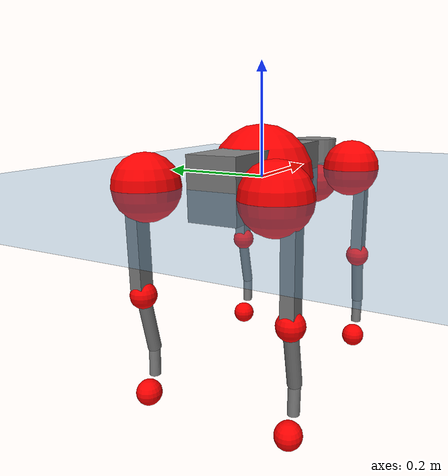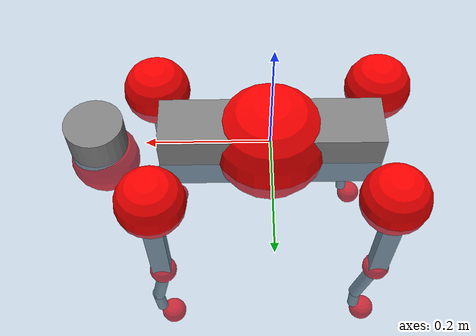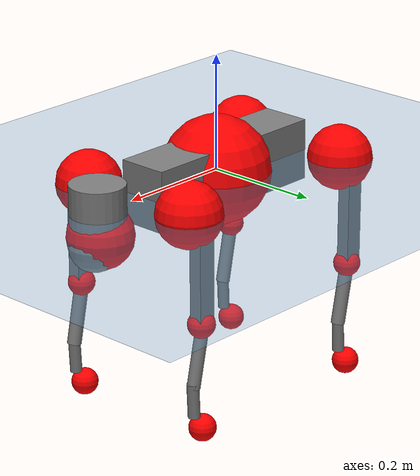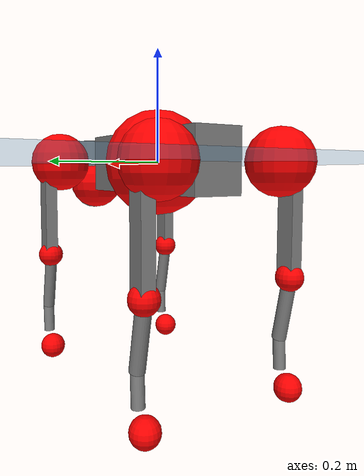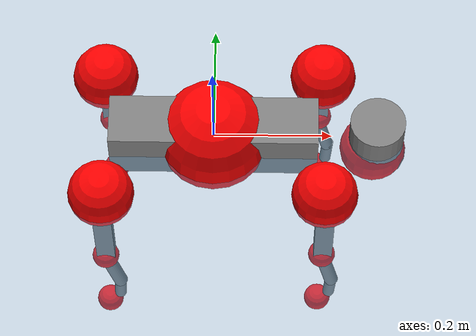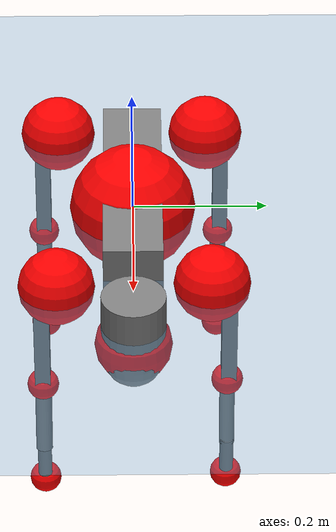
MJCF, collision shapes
<mujoco model="go2">
  <compiler angle="radian" assetdir="assets" balanceinertia="true" inertiafromgeom="false"/>

  <option timestep="0.005" density="1.2" viscosity="2e-05"/>

  <size nkey="1"/>

  <visual>
    <quality shadowsize="8192"/>
    <map shadowclip="0.5"/>
  </visual>

  <default>
    <default class="/">
      <geom contype="0" conaffinity="0" group="1" solref="-1000 -80"/>
      <site size="0.01 0.005 0.005" group="5"/>
      <general forcelimited="true" biastype="affine" gainprm="20" biasprm="0 -20 -0.5"/>
      <default class="go2">
        <joint armature="0.01" damping="0.01" frictionloss="0.2"/>
        <geom condim="1" margin="0.001"/>
        <default class="visual">
          <geom type="mesh" group="2"/>
        </default>
        <default class="collision">
          <geom group="3"/>
          <default class="foot">
            <geom size="0.022 0 0" condim="6" priority="1" friction="0.8 0.02 0.01" solimp="0.015 1 0.022"/>
          </default>
        </default>
        <default class="reward_collision_sphere">
          <geom group="5" rgba="1 0 0 1"/>
        </default>
      </default>
    </default>
  </default>

  <asset>
    <texture type="skybox" colorspace="auto" name="//unnamed_texture_0" builtin="gradient" rgb1="0.95 0.95 0.95" rgb2="0.95 0.95 0.95" width="100" height="600"/>
    <texture type="2d" colorspace="auto" name="texplane" builtin="checker" rgb1="0.345 0.575 0.748" rgb2="0.345 0.575 0.748" markrgb="1 1 1" width="512" height="512"/>
    <material name="MatPlane" class="/" texture="texplane" texuniform="true" texrepeat="2 2" specular="0.9"/>
    <material name="metal" class="/" rgba="0.9 0.95 0.95 1"/>
    <material name="black" class="/" rgba="0 0 0 1"/>
    <material name="white" class="/"/>
    <material name="gray" class="/" rgba="0.671705 0.692426 0.77427 1"/>
    <mesh name="base_0" class="/" file="base_0.obj"/>
    <mesh name="base_1" class="/" file="base_1.obj"/>
    <mesh name="base_2" class="/" file="base_2.obj"/>
    <mesh name="base_3" class="/" file="base_3.obj"/>
    <mesh name="base_4" class="/" file="base_4.obj"/>
    <mesh name="hip_0" class="/" file="hip_0.obj"/>
    <mesh name="hip_1" class="/" file="hip_1.obj"/>
    <mesh name="thigh_0" class="/" file="thigh_0.obj"/>
    <mesh name="thigh_1" class="/" file="thigh_1.obj"/>
    <mesh name="thigh_mirror_0" class="/" file="thigh_mirror_0.obj"/>
    <mesh name="thigh_mirror_1" class="/" file="thigh_mirror_1.obj"/>
    <mesh name="calf_0" class="/" file="calf_0.obj"/>
    <mesh name="calf_1" class="/" file="calf_1.obj"/>
    <mesh name="calf_mirror_0" class="/" file="calf_mirror_0.obj"/>
    <mesh name="calf_mirror_1" class="/" file="calf_mirror_1.obj"/>
    <mesh name="foot" class="/" file="foot.obj"/>
  </asset>

  <worldbody>
    <geom name="floor" class="/" size="100 100 0.125" type="plane" group="0" material="MatPlane"/>
    <light name="toplight_shadow" class="/" pos="0 0 5" dir="0.0990148 0.0990148 -0.990148" type="directional" ambient="0.04 0.04 0.04" diffuse="0.55 0.55 0.55" specular="0.12 0.12 0.12"/>
    <light name="toplight_fill" class="/" pos="0 0 5" dir="0.0990148 0.0990148 -0.990148" type="directional" castshadow="false" ambient="0.04 0.04 0.04" diffuse="0.3 0.3 0.3" specular="0.08 0.08 0.08"/>
    <body name="trunk" childclass="go2" pos="-7.19862e-05 -1.08364e-05 0.00013433" quat="1 5.66184e-06 -4.81145e-06 8.21094e-06">
      <inertial pos="0.0198229 -0.000373898 -0.00478929" quat="-0.00517038 0.708394 0.00164333 0.705796" mass="5.72671" diaginertia="0.0934158 0.0841212 0.0125529"/>
      <joint name="//unnamed_joint_0" type="free" armature="0" damping="0" frictionloss="0"/>
      <geom name="//unnamed_geom_1" class="visual" material="black" mesh="base_0"/>
      <geom name="//unnamed_geom_2" class="visual" material="black" mesh="base_1"/>
      <geom name="//unnamed_geom_3" class="visual" material="black" mesh="base_2"/>
      <geom name="//unnamed_geom_4" class="visual" material="white" mesh="base_3"/>
      <geom name="//unnamed_geom_5" class="visual" material="gray" mesh="base_4"/>
      <geom name="trunk_1" class="collision" size="0.176398 0.0438417 0.0534541" type="box"/>
      <geom name="trunk_2" class="collision" size="0.0468895 0.0422006" pos="0.276812 0 0.00875263" type="cylinder"/>
      <geom name="trunk_3" class="collision" size="0.0440762" pos="0.284582 0 -0.0525158"/>
      <geom name="//unnamed_geom_9" class="reward_collision_sphere" size="0.0937791"/>
      <geom name="//unnamed_geom_10" class="reward_collision_sphere" size="0.0562674" pos="0.271955 0 -0.0393868"/>
      <site name="imu" pos="-0.0254991 -0.00448432 0.0370219" size="0.00937791"/>
      <camera name="track" pos="0 -1.93368 0" quat="0.707107 0.707107 0 0" mode="trackcom"/>
      <camera name="ego_camera" pos="0.303036 0 0.0393868" quat="-0.5 -0.5 0.5 0.5"/>
      <body name="FL_hip" pos="0.186639 0.0469058 0.00254182" quat="1 -0.000119474 -6.25228e-05 7.22545e-05">
        <inertial pos="-0.00563195 0.00197964 -0.000969453" quat="0.49799 0.499022 0.504423 0.498538" mass="0.560881" diaginertia="0.000763491 0.000506846 0.000248389"/>
        <joint name="FL_hip_joint" pos="0 0 0" axis="0.999983 -0.00546586 -0.00216554" stiffness="0.00863601" range="-1.01227 1.0302" armature="0.00952314" damping="0.00250815" frictionloss="0.182516"/>
        <geom name="//unnamed_geom_11" class="visual" material="metal" mesh="hip_0"/>
        <geom name="//unnamed_geom_12" class="visual" material="gray" mesh="hip_1"/>
        <geom name="//unnamed_geom_13" class="collision" size="0.0431384 0.0187558" pos="0 0.0773473 0" quat="0.707107 0.707107 0 0" type="cylinder"/>
        <geom name="//unnamed_geom_14" class="reward_collision_sphere" size="0.0562674" pos="0 0.0676789 0"/>
        <body name="FL_thigh" pos="-0.00128177 0.0937962 0.00200631" quat="1 -0.00011119 0.000169178 -9.37551e-05">
          <inertial pos="-0.00432926 -0.0221566 -0.0279625" quat="0.830872 0.086471 -0.0195945 0.549354" mass="0.950314" diaginertia="0.00513763 0.00492124 0.000451498"/>
          <joint name="FL_thigh_joint" pos="0 0 0" axis="0.00396994 0.99998 -0.004827" stiffness="0.00492577" range="-1.5885 3.51651" armature="0.00950772" damping="0.0107688" frictionloss="0.180999"/>
          <geom name="//unnamed_geom_15" class="visual" material="metal" mesh="thigh_0"/>
          <geom name="//unnamed_geom_16" class="visual" material="gray" mesh="thigh_1"/>
          <geom name="//unnamed_geom_17" class="collision" size="0.0998747 0.0114879 0.0159424" pos="0 0 -0.0932155" quat="0.707107 0 0.707107 0" type="box"/>
          <body name="FL_calf" pos="-0.00073945 -0.00196639 -0.185786" quat="1 -0.000328869 0.00033406 1.87347e-05">
            <inertial pos="0.00561817 -0.000443496 -0.12497" quat="0.710653 0.00162446 -0.00464199 0.703526" mass="0.19828" diaginertia="0.00129142 0.0012585 2.68594e-05"/>
            <joint name="FL_calf_joint" pos="0 0 0" axis="-0.007629 0.99997 0.0014038" stiffness="0.00252776" range="-2.75487 -0.83291" armature="0.00976605" damping="0.000367445" frictionloss="0.187783"/>
            <geom name="//unnamed_geom_18" class="visual" material="gray" mesh="calf_0"/>
            <geom name="//unnamed_geom_19" class="visual" material="black" mesh="calf_1"/>
            <geom name="FL_calf0" class="collision" size="0.0112535 0.0562674" pos="0.00777015 0 -0.0525158" quat="0.994493 0 -0.104807 0" type="cylinder"/>
            <geom name="//unnamed_geom_21" class="collision" size="0.0103157 0.0304782" pos="0.0194254 0 -0.129539" quat="0.999688 0 0.0249974 0" type="cylinder"/>
            <geom name="//unnamed_geom_22" class="visual" pos="0 0 -0.186431" quat="1 0 0 0" material="black" mesh="foot"/>
            <geom name="FL_foot" class="foot" size="0.0183518" pos="-0.00194254 0 -0.186431"/>
            <geom name="//unnamed_geom_24" class="reward_collision_sphere" size="0.0234448"/>
            <geom name="//unnamed_geom_25" class="reward_collision_sphere" size="0.0234448" pos="-0.00194254 0 -0.186431"/>
            <site name="FL_foot" class="foot" pos="-0.00194254 0 -0.186431" size="0.00937791"/>
          </body>
        </body>
      </body>
      <body name="FR_hip" pos="0.188538 -0.0438391 -0.000631258" quat="1 7.50308e-05 -8.74586e-05 -0.000141008">
        <inertial pos="-0.00474866 -0.0011999 -0.000713907" quat="0.497766 0.506068 0.498634 0.497483" mass="0.55478" diaginertia="0.000767967 0.000492462 0.000247251"/>
        <joint name="FR_hip_joint" pos="0 0 0" axis="0.99999 -0.00431291 -0.000931049" stiffness="0.00705341" range="-1.05045 1.0524" armature="0.0092182" damping="0.0178989" frictionloss="0.181793"/>
        <geom name="//unnamed_geom_26" class="visual" pos="0 7.97797e-10 3.42192e-08" quat="4.63268e-05 1 0 0" material="metal" mesh="hip_0"/>
        <geom name="//unnamed_geom_27" class="visual" pos="0 1.29332e-09 -8.46371e-08" quat="4.63268e-05 1 0 0" material="gray" mesh="hip_1"/>
        <geom name="//unnamed_geom_28" class="collision" size="0.0431384 0.0187558" pos="0 -0.0773473 0" quat="0.707107 0.707107 0 0" type="cylinder"/>
        <geom name="//unnamed_geom_29" class="reward_collision_sphere" size="0.0562674" pos="0 -0.0676789 0"/>
        <body name="FR_thigh" pos="0.00199841 -0.0907325 0.00151681" quat="1 0.000369174 -0.000155621 0.000316927">
          <inertial pos="-0.00314579 0.0200844 -0.0283497" quat="0.552976 -0.017466 0.0873213 0.828425" mass="0.950315" diaginertia="0.00516812 0.00495342 0.000457913"/>
          <joint name="FR_thigh_joint" pos="0 0 0" axis="-0.000870839 -0.999999 0.000819317" stiffness="0.00010335" range="-3.51807 1.5677" armature="0.00950855" damping="0.0138265" frictionloss="0.187233"/>
          <geom name="//unnamed_geom_30" class="visual" material="metal" mesh="thigh_mirror_0"/>
          <geom name="//unnamed_geom_31" class="visual" material="gray" mesh="thigh_mirror_1"/>
          <geom name="//unnamed_geom_32" class="collision" size="0.0998747 0.0114879 0.0159424" pos="0 0 -0.0932155" quat="0.707107 0 0.707107 0" type="box"/>
          <body name="FR_calf" pos="-0.00112216 0.000156692 -0.18567" quat="1 -3.16491e-05 0.000311704 7.42921e-05">
            <inertial pos="0.00513284 0.000608596 -0.12463" quat="0.702381 -0.00752345 -0.000244232 0.711761" mass="0.199474" diaginertia="0.00129331 0.00123513 2.71811e-05"/>
            <joint name="FR_calf_joint" pos="0 0 0" axis="0.00392857 -0.999963 0.00768502" stiffness="0.00263047" range="0.846699 2.71421" armature="0.00990788" damping="0.0162807" frictionloss="0.182552"/>
            <geom name="//unnamed_geom_33" class="visual" material="gray" mesh="calf_mirror_0"/>
            <geom name="//unnamed_geom_34" class="visual" material="black" mesh="calf_mirror_1"/>
            <geom name="FR_calf0" class="collision" size="0.0121913 0.0562674" pos="0.00971268 0 -0.0525158" quat="0.995004 0 -0.0998334 0" type="cylinder"/>
            <geom name="//unnamed_geom_36" class="collision" size="0.0103157 0.0304782" pos="0.0194254 0 -0.129539" quat="0.999688 0 0.0249974 0" type="cylinder"/>
            <geom name="//unnamed_geom_37" class="visual" pos="0 0 -0.186431" quat="1 0 0 0" material="black" mesh="foot"/>
            <geom name="FR_foot" class="foot" size="0.0221143" pos="-0.00194254 0 -0.186431"/>
            <geom name="//unnamed_geom_39" class="reward_collision_sphere" size="0.0234448"/>
            <geom name="//unnamed_geom_40" class="reward_collision_sphere" size="0.0234448" pos="-0.00194254 0 -0.186431"/>
            <site name="FR_foot" class="foot" pos="-0.00194254 0 -0.186431" size="0.00937791"/>
          </body>
        </body>
      </body>
      <body name="RL_hip" pos="-0.188126 0.0445607 -0.000767059" quat="1 2.0309e-05 -4.69944e-05 -3.95106e-05">
        <inertial pos="0.00513021 0.00199748 -0.000736506" quat="0.505832 0.49728 0.497147 0.499691" mass="0.551312" diaginertia="0.000754277 0.000497732 0.000243252"/>
        <joint name="RL_hip_joint" pos="0 0 0" axis="-0.999893 -0.0100029 0.0106914" stiffness="0.00388155" range="-1.04503 1.0656" armature="0.00929937" damping="0.0115426" frictionloss="0.191428"/>
        <geom name="//unnamed_geom_41" class="visual" pos="-8.36364e-10 0 -1.63947e-07" quat="4.63268e-05 0 1 0" material="metal" mesh="hip_0"/>
        <geom name="//unnamed_geom_42" class="visual" pos="-1.35585e-09 0 -1.45397e-07" quat="4.63268e-05 0 1 0" material="gray" mesh="hip_1"/>
        <geom name="//unnamed_geom_43" class="collision" size="0.0431384 0.0187558" pos="0 0.0773473 0" quat="0.707107 0.707107 0 0" type="cylinder"/>
        <geom name="//unnamed_geom_44" class="reward_collision_sphere" size="0.0562674" pos="0 0.0676789 0"/>
        <body name="RL_thigh" pos="0.000526888 0.0917111 -0.00135852" quat="1 -5.71423e-05 -1.95949e-05 0.000198011">
          <inertial pos="-0.00377488 -0.021676 -0.0298376" quat="0.830678 0.0833799 -0.0163697 0.550231" mass="0.962336" diaginertia="0.00509849 0.00483745 0.00044661"/>
          <joint name="RL_thigh_joint" pos="0 0 0" axis="-0.00612701 0.999978 0.00240736" range="-0.522138 4.52192" armature="0.00969859" damping="0.00635225" frictionloss="0.186324"/>
          <geom name="//unnamed_geom_45" class="visual" material="metal" mesh="thigh_0"/>
          <geom name="//unnamed_geom_46" class="visual" material="gray" mesh="thigh_1"/>
          <geom name="//unnamed_geom_47" class="collision" size="0.0998747 0.0114879 0.0159424" pos="0 0 -0.0932155" quat="0.707107 0 0.707107 0" type="box"/>
          <body name="RL_calf" pos="0.00052602 -0.00234741 -0.187043" quat="1 9.42107e-06 3.11513e-06 3.55466e-06">
            <inertial pos="0.00606149 -0.000306296 -0.124186" quat="0.71042 0.00259979 -0.00373395 0.703763" mass="0.195131" diaginertia="0.00128561 0.00122796 2.70274e-05"/>
            <joint name="RL_calf_joint" pos="0 0 0" axis="0.00546342 0.999984 -0.00171615" stiffness="0.00021598" range="-2.69078 -0.834848" armature="0.00923243" damping="0.00418553" frictionloss="0.187137"/>
            <geom name="//unnamed_geom_48" class="visual" material="gray" mesh="calf_0"/>
            <geom name="//unnamed_geom_49" class="visual" material="black" mesh="calf_1"/>
            <geom name="RL_calf0" class="collision" size="0.0121913 0.0562674" pos="0.00971268 0 -0.0525158" quat="0.995004 0 -0.0998334 0" type="cylinder"/>
            <geom name="//unnamed_geom_51" class="collision" size="0.0103157 0.0304782" pos="0.0194254 0 -0.129539" quat="0.999688 0 0.0249974 0" type="cylinder"/>
            <geom name="//unnamed_geom_52" class="visual" pos="0 0 -0.186431" quat="1 0 0 0" material="black" mesh="foot"/>
            <geom name="RL_foot" class="foot" size="0.0172094" pos="-0.00194254 0 -0.186431"/>
            <geom name="//unnamed_geom_54" class="reward_collision_sphere" size="0.0234448"/>
            <geom name="//unnamed_geom_55" class="reward_collision_sphere" size="0.0234448" pos="-0.00194254 0 -0.186431"/>
            <site name="RL_foot" class="foot" pos="-0.00194254 0 -0.186431" size="0.00937791"/>
          </body>
        </body>
      </body>
      <body name="RR_hip" pos="-0.187184 -0.0459996 -0.000619167" quat="1 -0.000101656 -0.00021573 8.48016e-05">
        <inertial pos="0.00540626 -0.00137337 0.000714499" quat="0.499004 0.497443 0.498231 0.505284" mass="0.550783" diaginertia="0.000754582 0.000493482 0.000247144"/>
        <joint name="RR_hip_joint" pos="0 0 0" axis="-0.999985 0.00107198 -0.00527841" range="-1.05555 1.02835" armature="0.0094296" damping="0.00656065" frictionloss="0.190312"/>
        <geom name="//unnamed_geom_56" class="visual" pos="8.36211e-10 7.97797e-10 -1.98166e-07" quat="2.14617e-09 4.63268e-05 4.63268e-05 -1" material="metal" mesh="hip_0"/>
        <geom name="//unnamed_geom_57" class="visual" pos="1.35622e-09 1.29332e-09 -6.07602e-08" quat="2.14617e-09 4.63268e-05 4.63268e-05 -1" material="gray" mesh="hip_1"/>
        <geom name="//unnamed_geom_58" class="collision" size="0.0431384 0.0187558" pos="0 -0.0773473 0" quat="0.707107 0.707107 0 0" type="cylinder"/>
        <geom name="//unnamed_geom_59" class="reward_collision_sphere" size="0.0562674" pos="0 -0.0676789 0"/>
        <body name="RR_thigh" pos="0.000503942 -0.0927274 -0.00120133" quat="1 0.000225881 8.52391e-05 0.000165827">
          <inertial pos="-0.00360788 0.0206965 -0.0294434" quat="0.550966 -0.0189017 0.0843239 0.830041" mass="0.956224" diaginertia="0.00520068 0.00496745 0.000456288"/>
          <joint name="RR_thigh_joint" pos="0 0 0" axis="0.00567018 -0.999983 -0.000927375" stiffness="0.00285644" range="-4.52848 0.50655" armature="0.00950939" damping="0.0132852" frictionloss="0.19214"/>
          <geom name="//unnamed_geom_60" class="visual" material="metal" mesh="thigh_mirror_0"/>
          <geom name="//unnamed_geom_61" class="visual" material="gray" mesh="thigh_mirror_1"/>
          <geom name="//unnamed_geom_62" class="collision" size="0.0998747 0.0114879 0.0159424" pos="0 0 -0.0932155" quat="0.707107 0 0.707107 0" type="box"/>
          <body name="RR_calf" pos="-0.00150837 -0.000617246 -0.187608" quat="1 0.000358256 -7.7673e-05 0.000390618">
            <inertial pos="0.0077626 0.000659838 -0.124186" quat="0.701561 -0.0051223 0.00408181 0.712579" mass="0.199771" diaginertia="0.00130625 0.00124226 2.74694e-05"/>
            <joint name="RR_calf_joint" pos="0 0 0" axis="-0.000573895 -0.999978 0.00654594" range="0.835608 2.74921" armature="0.0089426" damping="0.00729193" frictionloss="0.189422"/>
            <geom name="//unnamed_geom_63" class="visual" material="gray" mesh="calf_mirror_0"/>
            <geom name="//unnamed_geom_64" class="visual" material="black" mesh="calf_mirror_1"/>
            <geom name="RR_calf0" class="collision" size="0.0121913 0.0562674" pos="0.00971268 0 -0.0525158" quat="0.995004 0 -0.0998334 0" type="cylinder"/>
            <geom name="//unnamed_geom_66" class="collision" size="0.0103157 0.0304782" pos="0.0194254 0 -0.129539" quat="0.999688 0 0.0249974 0" type="cylinder"/>
            <geom name="//unnamed_geom_67" class="visual" pos="0 0 -0.186431" quat="1 0 0 0" material="black" mesh="foot"/>
            <geom name="RR_foot" class="foot" size="0.0209677" pos="-0.00194254 0 -0.186431"/>
            <geom name="//unnamed_geom_69" class="reward_collision_sphere" size="0.0234448"/>
            <geom name="//unnamed_geom_70" class="reward_collision_sphere" size="0.0234448" pos="-0.00194254 0 -0.186431"/>
            <site name="RR_foot" class="foot" pos="-0.00194254 0 -0.186431" size="0.00937791"/>
          </body>
        </body>
      </body>
    </body>
  </worldbody>

  <contact>
    <pair class="/" geom1="floor" geom2="FL_foot" name="//unnamed_contact_0"/>
    <pair class="/" geom1="floor" geom2="FR_foot" name="//unnamed_contact_1"/>
    <pair class="/" geom1="floor" geom2="RL_foot" name="//unnamed_contact_2"/>
    <pair class="/" geom1="floor" geom2="RR_foot" name="//unnamed_contact_3"/>
  </contact>

  <actuator>
    <general name="FL_hip" class="/" joint="FL_hip_joint" forcerange="-23.642 23.642" gainprm="19.4272" biasprm="0 -19.4272 -0.46431"/>
    <general name="FL_thigh" class="/" joint="FL_thigh_joint" forcerange="-22.8408 22.8408" gainprm="19.4272" biasprm="0 -19.4272 -0.46431"/>
    <general name="FL_calf" class="/" joint="FL_calf_joint" forcerange="-42.7367 42.7367" gainprm="19.4272" biasprm="0 -19.4272 -0.46431"/>
    <general name="FR_hip" class="/" joint="FR_hip_joint" forcerange="-23.1913 23.1913" gainprm="19.4272" biasprm="0 -19.4272 -0.46431"/>
    <general name="FR_thigh" class="/" joint="FR_thigh_joint" forcerange="-23.2178 23.2178" gainprm="19.4272" biasprm="0 -19.4272 -0.46431"/>
    <general name="FR_calf" class="/" joint="FR_calf_joint" forcerange="-41.6528 41.6528" gainprm="19.4272" biasprm="0 -19.4272 -0.46431"/>
    <general name="RL_hip" class="/" joint="RL_hip_joint" forcerange="-22.0995 22.0995" gainprm="19.4272" biasprm="0 -19.4272 -0.46431"/>
    <general name="RL_thigh" class="/" joint="RL_thigh_joint" forcerange="-22.706 22.706" gainprm="19.4272" biasprm="0 -19.4272 -0.46431"/>
    <general name="RL_calf" class="/" joint="RL_calf_joint" forcerange="-44.0448 44.0448" gainprm="19.4272" biasprm="0 -19.4272 -0.46431"/>
    <general name="RR_hip" class="/" joint="RR_hip_joint" forcerange="-20.9778 20.9778" gainprm="19.4272" biasprm="0 -19.4272 -0.46431"/>
    <general name="RR_thigh" class="/" joint="RR_thigh_joint" forcerange="-21.8279 21.8279" gainprm="19.4272" biasprm="0 -19.4272 -0.46431"/>
    <general name="RR_calf" class="/" joint="RR_calf_joint" forcerange="-43.0158 43.0158" gainprm="19.4272" biasprm="0 -19.4272 -0.46431"/>
  </actuator>

  <sensor>
    <gyro site="imu" name="imu_angular_velocity"/>
    <velocimeter site="imu" name="imu_linear_velocity"/>
    <framelinvel objtype="site" objname="FL_foot" name="FL_foot_global_linear_velocity"/>
    <framelinvel objtype="site" objname="FR_foot" name="FR_foot_global_linear_velocity"/>
    <framelinvel objtype="site" objname="RL_foot" name="RL_foot_global_linear_velocity"/>
    <framelinvel objtype="site" objname="RR_foot" name="RR_foot_global_linear_velocity"/>
  </sensor>

  <keyframe>
    <key name="home" qpos="0 0 0.325 1 0 0 0 0.1 0.8 -1.5 -0.1 -0.8 1.5 -0.1 0.8 -1.5 0.1 -0.8 1.5"/>
  </keyframe>
</mujoco>
